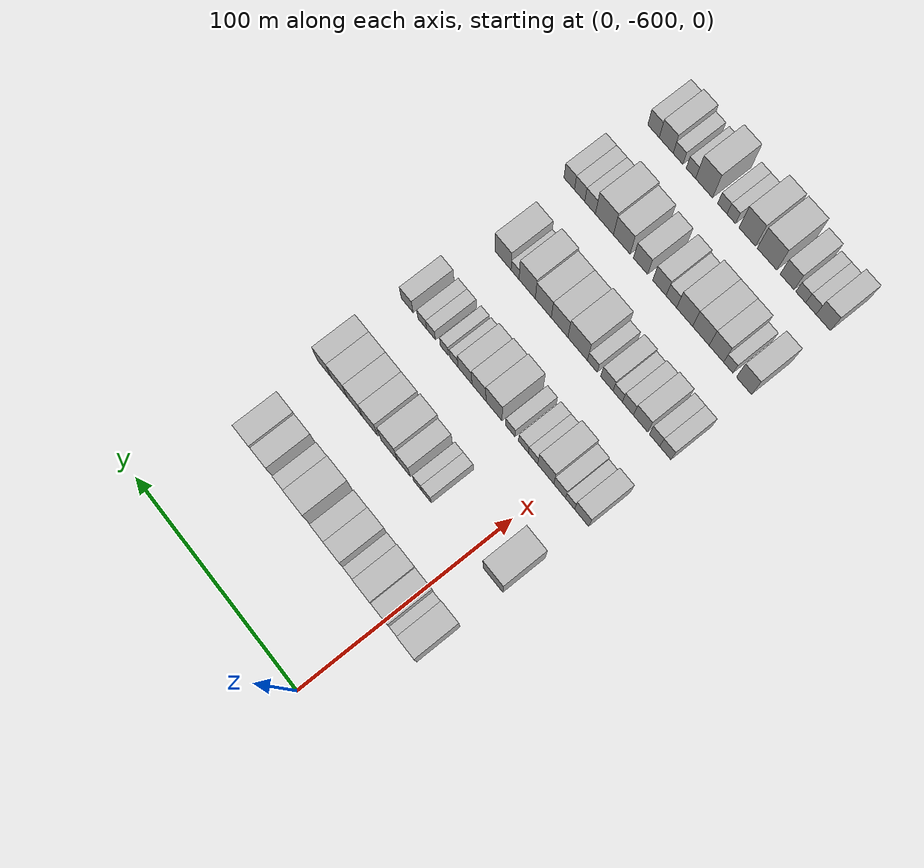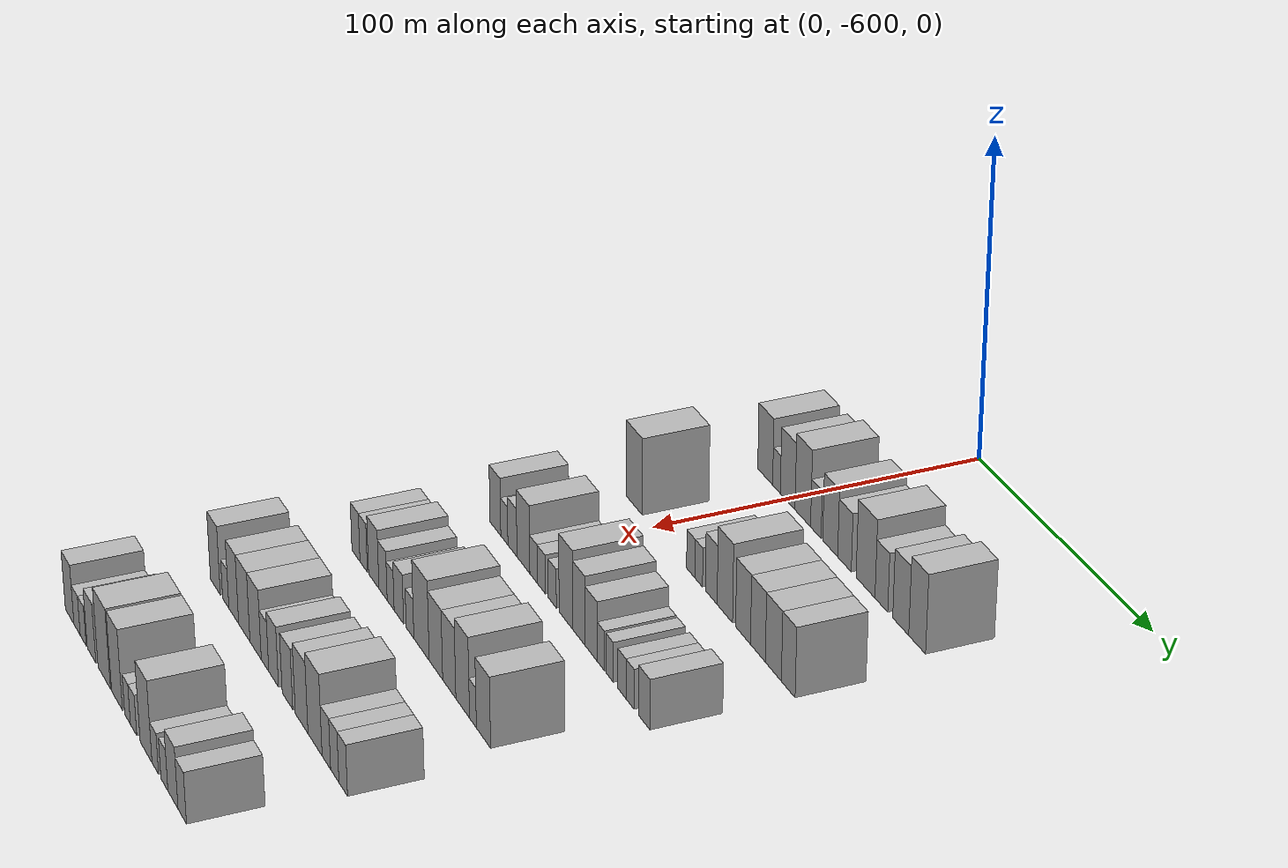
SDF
<sdf version="1.6">
 <world name="default">
  <model name="building_1">
   <static>1</static>
   <pose>50.0000 -613.9658 0 0.000000 0.000000 0.000000</pose>
   <link name="link">
    <pose>0 0 10.50 0 0 0</pose>
    <collision name="collision"><geometry><box><size>20.0000 10.0684 21.0000</size></box></geometry></collision>
    <visual name="visual">
     <cast_shadows>0</cast_shadows>
     <geometry><box><size>20.0000 10.0684 21.0000</size></box></geometry>
     <material>
      <script>
       <uri>model://HANNAS_wall/materials/scripts</uri>
       <uri>model://HANNAS_wall/materials/textures</uri>
       <name>vrc/HANNAS_wall</name>
      </script>
     </material>
    </visual>
   </link>
  </model>
  <model name="building_2">
   <static>1</static>
   <pose>50.0000 -606.3582 0 0.000000 0.000000 0.000000</pose>
   <link name="link">
    <pose>0 0 6.00 0 0 0</pose>
    <collision name="collision"><geometry><box><size>20.0000 5.1468 12.0000</size></box></geometry></collision>
    <visual name="visual">
     <cast_shadows>0</cast_shadows>
     <geometry><box><size>20.0000 5.1468 12.0000</size></box></geometry>
     <material>
      <script>
       <uri>model://HANNAS_wall/materials/scripts</uri>
       <uri>model://HANNAS_wall/materials/textures</uri>
       <name>vrc/HANNAS_wall</name>
      </script>
     </material>
    </visual>
   </link>
  </model>
  <model name="building_3">
   <static>1</static>
   <pose>50.0000 -598.9114 0 0.000000 0.000000 0.000000</pose>
   <link name="link">
    <pose>0 0 10.50 0 0 0</pose>
    <collision name="collision"><geometry><box><size>20.0000 9.7468 21.0000</size></box></geometry></collision>
    <visual name="visual">
     <cast_shadows>0</cast_shadows>
     <geometry><box><size>20.0000 9.7468 21.0000</size></box></geometry>
     <material>
      <script>
       <uri>model://HANNAS_wall/materials/scripts</uri>
       <uri>model://HANNAS_wall/materials/textures</uri>
       <name>vrc/HANNAS_wall</name>
      </script>
     </material>
    </visual>
   </link>
  </model>
  <model name="building_4">
   <static>1</static>
   <pose>50.0000 -588.9398 0 0.000000 0.000000 0.000000</pose>
   <link name="link">
    <pose>0 0 12.00 0 0 0</pose>
    <collision name="collision"><geometry><box><size>20.0000 10.1965 24.0000</size></box></geometry></collision>
    <visual name="visual">
     <cast_shadows>0</cast_shadows>
     <geometry><box><size>20.0000 10.1965 24.0000</size></box></geometry>
     <material>
      <script>
       <uri>model://HANNAS_wall/materials/scripts</uri>
       <uri>model://HANNAS_wall/materials/textures</uri>
       <name>vrc/HANNAS_wall</name>
      </script>
     </material>
    </visual>
   </link>
  </model>
  <model name="building_5">
   <static>1</static>
   <pose>50.0000 -580.4396 0 0.000000 0.000000 0.000000</pose>
   <link name="link">
    <pose>0 0 7.50 0 0 0</pose>
    <collision name="collision"><geometry><box><size>20.0000 6.8040 15.0000</size></box></geometry></collision>
    <visual name="visual">
     <cast_shadows>0</cast_shadows>
     <geometry><box><size>20.0000 6.8040 15.0000</size></box></geometry>
     <material>
      <script>
       <uri>model://HANNAS_wall/materials/scripts</uri>
       <uri>model://HANNAS_wall/materials/textures</uri>
       <name>vrc/HANNAS_wall</name>
      </script>
     </material>
    </visual>
   </link>
  </model>
  <model name="building_6">
   <static>1</static>
   <pose>50.0000 -571.2477 0 0.000000 0.000000 0.000000</pose>
   <link name="link">
    <pose>0 0 10.50 0 0 0</pose>
    <collision name="collision"><geometry><box><size>20.0000 9.5797 21.0000</size></box></geometry></collision>
    <visual name="visual">
     <cast_shadows>0</cast_shadows>
     <geometry><box><size>20.0000 9.5797 21.0000</size></box></geometry>
     <material>
      <script>
       <uri>model://HANNAS_wall/materials/scripts</uri>
       <uri>model://HANNAS_wall/materials/textures</uri>
       <name>vrc/HANNAS_wall</name>
      </script>
     </material>
    </visual>
   </link>
  </model>
  <model name="building_7">
   <static>1</static>
   <pose>50.0000 -562.1629 0 0.000000 0.000000 0.000000</pose>
   <link name="link">
    <pose>0 0 9.00 0 0 0</pose>
    <collision name="collision"><geometry><box><size>20.0000 8.5899 18.0000</size></box></geometry></collision>
    <visual name="visual">
     <cast_shadows>0</cast_shadows>
     <geometry><box><size>20.0000 8.5899 18.0000</size></box></geometry>
     <material>
      <script>
       <uri>model://HANNAS_wall/materials/scripts</uri>
       <uri>model://HANNAS_wall/materials/textures</uri>
       <name>vrc/HANNAS_wall</name>
      </script>
     </material>
    </visual>
   </link>
  </model>
  <model name="building_8">
   <static>1</static>
   <pose>50.0000 -549.0351 0 0.000000 0.000000 0.000000</pose>
   <link name="link">
    <pose>0 0 12.00 0 0 0</pose>
    <collision name="collision"><geometry><box><size>20.0000 11.6658 24.0000</size></box></geometry></collision>
    <visual name="visual">
     <cast_shadows>0</cast_shadows>
     <geometry><box><size>20.0000 11.6658 24.0000</size></box></geometry>
     <material>
      <script>
       <uri>model://HANNAS_wall/materials/scripts</uri>
       <uri>model://HANNAS_wall/materials/textures</uri>
       <name>vrc/HANNAS_wall</name>
      </script>
     </material>
    </visual>
   </link>
  </model>
  <model name="building_9">
   <static>1</static>
   <pose>50.0000 -539.3212 0 0.000000 0.000000 0.000000</pose>
   <link name="link">
    <pose>0 0 9.00 0 0 0</pose>
    <collision name="collision"><geometry><box><size>20.0000 7.7619 18.0000</size></box></geometry></collision>
    <visual name="visual">
     <cast_shadows>0</cast_shadows>
     <geometry><box><size>20.0000 7.7619 18.0000</size></box></geometry>
     <material>
      <script>
       <uri>model://HANNAS_wall/materials/scripts</uri>
       <uri>model://HANNAS_wall/materials/textures</uri>
       <name>vrc/HANNAS_wall</name>
      </script>
     </material>
    </visual>
   </link>
  </model>
  <model name="building_10">
   <static>1</static>
   <pose>50.0000 -527.6561 0 0.000000 0.000000 0.000000</pose>
   <link name="link">
    <pose>0 0 10.50 0 0 0</pose>
    <collision name="collision"><geometry><box><size>20.0000 9.5683 21.0000</size></box></geometry></collision>
    <visual name="visual">
     <cast_shadows>0</cast_shadows>
     <geometry><box><size>20.0000 9.5683 21.0000</size></box></geometry>
     <material>
      <script>
       <uri>model://HANNAS_wall/materials/scripts</uri>
       <uri>model://HANNAS_wall/materials/textures</uri>
       <name>vrc/HANNAS_wall</name>
      </script>
     </material>
    </visual>
   </link>
  </model>
  <model name="building_11">
   <static>1</static>
   <pose>50.0000 -517.9128 0 0.000000 0.000000 0.000000</pose>
   <link name="link">
    <pose>0 0 12.00 0 0 0</pose>
    <collision name="collision"><geometry><box><size>20.0000 9.9184 24.0000</size></box></geometry></collision>
    <visual name="visual">
     <cast_shadows>0</cast_shadows>
     <geometry><box><size>20.0000 9.9184 24.0000</size></box></geometry>
     <material>
      <script>
       <uri>model://HANNAS_wall/materials/scripts</uri>
       <uri>model://HANNAS_wall/materials/textures</uri>
       <name>vrc/HANNAS_wall</name>
      </script>
     </material>
    </visual>
   </link>
  </model>
  <model name="building_141">
   <static>1</static>
   <pose>90.0000 -613.2045 0 0.000000 0.000000 0.000000</pose>
   <link name="link">
    <pose>0 0 12.00 0 0 0</pose>
    <collision name="collision"><geometry><box><size>20.0000 11.5911 24.0000</size></box></geometry></collision>
    <visual name="visual">
     <cast_shadows>0</cast_shadows>
     <geometry><box><size>20.0000 11.5911 24.0000</size></box></geometry>
     <material>
      <script>
       <uri>model://HANNAS_wall/materials/scripts</uri>
       <uri>model://HANNAS_wall/materials/textures</uri>
       <name>vrc/HANNAS_wall</name>
      </script>
     </material>
    </visual>
   </link>
  </model>
  <model name="building_142">
   <static>1</static>
   <pose>90.0000 -573.8147 0 0.000000 0.000000 0.000000</pose>
   <link name="link">
    <pose>0 0 6.00 0 0 0</pose>
    <collision name="collision"><geometry><box><size>20.0000 5.7295 12.0000</size></box></geometry></collision>
    <visual name="visual">
     <cast_shadows>0</cast_shadows>
     <geometry><box><size>20.0000 5.7295 12.0000</size></box></geometry>
     <material>
      <script>
       <uri>model://HANNAS_wall/materials/scripts</uri>
       <uri>model://HANNAS_wall/materials/textures</uri>
       <name>vrc/HANNAS_wall</name>
      </script>
     </material>
    </visual>
   </link>
  </model>
  <model name="building_143">
   <static>1</static>
   <pose>90.0000 -568.4647 0 0.000000 0.000000 0.000000</pose>
   <link name="link">
    <pose>0 0 6.00 0 0 0</pose>
    <collision name="collision"><geometry><box><size>20.0000 4.9705 12.0000</size></box></geometry></collision>
    <visual name="visual">
     <cast_shadows>0</cast_shadows>
     <geometry><box><size>20.0000 4.9705 12.0000</size></box></geometry>
     <material>
      <script>
       <uri>model://HANNAS_wall/materials/scripts</uri>
       <uri>model://HANNAS_wall/materials/textures</uri>
       <name>vrc/HANNAS_wall</name>
      </script>
     </material>
    </visual>
   </link>
  </model>
  <model name="building_144">
   <static>1</static>
   <pose>90.0000 -560.1111 0 0.000000 0.000000 0.000000</pose>
   <link name="link">
    <pose>0 0 9.00 0 0 0</pose>
    <collision name="collision"><geometry><box><size>20.0000 7.7368 18.0000</size></box></geometry></collision>
    <visual name="visual">
     <cast_shadows>0</cast_shadows>
     <geometry><box><size>20.0000 7.7368 18.0000</size></box></geometry>
     <material>
      <script>
       <uri>model://HANNAS_wall/materials/scripts</uri>
       <uri>model://HANNAS_wall/materials/textures</uri>
       <name>vrc/HANNAS_wall</name>
      </script>
     </material>
    </visual>
   </link>
  </model>
  <model name="building_145">
   <static>1</static>
   <pose>90.0000 -551.2249 0 0.000000 0.000000 0.000000</pose>
   <link name="link">
    <pose>0 0 12.00 0 0 0</pose>
    <collision name="collision"><geometry><box><size>20.0000 10.0356 24.0000</size></box></geometry></collision>
    <visual name="visual">
     <cast_shadows>0</cast_shadows>
     <geometry><box><size>20.0000 10.0356 24.0000</size></box></geometry>
     <material>
      <script>
       <uri>model://HANNAS_wall/materials/scripts</uri>
       <uri>model://HANNAS_wall/materials/textures</uri>
       <name>vrc/HANNAS_wall</name>
      </script>
     </material>
    </visual>
   </link>
  </model>
  <model name="building_146">
   <static>1</static>
   <pose>90.0000 -539.4561 0 0.000000 0.000000 0.000000</pose>
   <link name="link">
    <pose>0 0 10.50 0 0 0</pose>
    <collision name="collision"><geometry><box><size>20.0000 9.5019 21.0000</size></box></geometry></collision>
    <visual name="visual">
     <cast_shadows>0</cast_shadows>
     <geometry><box><size>20.0000 9.5019 21.0000</size></box></geometry>
     <material>
      <script>
       <uri>model://HANNAS_wall/materials/scripts</uri>
       <uri>model://HANNAS_wall/materials/textures</uri>
       <name>vrc/HANNAS_wall</name>
      </script>
     </material>
    </visual>
   </link>
  </model>
  <model name="building_147">
   <static>1</static>
   <pose>90.0000 -530.0184 0 0.000000 0.000000 0.000000</pose>
   <link name="link">
    <pose>0 0 10.50 0 0 0</pose>
    <collision name="collision"><geometry><box><size>20.0000 9.3736 21.0000</size></box></geometry></collision>
    <visual name="visual">
     <cast_shadows>0</cast_shadows>
     <geometry><box><size>20.0000 9.3736 21.0000</size></box></geometry>
     <material>
      <script>
       <uri>model://HANNAS_wall/materials/scripts</uri>
       <uri>model://HANNAS_wall/materials/textures</uri>
       <name>vrc/HANNAS_wall</name>
      </script>
     </material>
    </visual>
   </link>
  </model>
  <model name="building_148">
   <static>1</static>
   <pose>90.0000 -520.3338 0 0.000000 0.000000 0.000000</pose>
   <link name="link">
    <pose>0 0 10.50 0 0 0</pose>
    <collision name="collision"><geometry><box><size>20.0000 9.9957 21.0000</size></box></geometry></collision>
    <visual name="visual">
     <cast_shadows>0</cast_shadows>
     <geometry><box><size>20.0000 9.9957 21.0000</size></box></geometry>
     <material>
      <script>
       <uri>model://HANNAS_wall/materials/scripts</uri>
       <uri>model://HANNAS_wall/materials/textures</uri>
       <name>vrc/HANNAS_wall</name>
      </script>
     </material>
    </visual>
   </link>
  </model>
  <model name="building_149">
   <static>1</static>
   <pose>90.0000 -511.1030 0 0.000000 0.000000 0.000000</pose>
   <link name="link">
    <pose>0 0 10.50 0 0 0</pose>
    <collision name="collision"><geometry><box><size>20.0000 8.4659 21.0000</size></box></geometry></collision>
    <visual name="visual">
     <cast_shadows>0</cast_shadows>
     <geometry><box><size>20.0000 8.4659 21.0000</size></box></geometry>
     <material>
      <script>
       <uri>model://HANNAS_wall/materials/scripts</uri>
       <uri>model://HANNAS_wall/materials/textures</uri>
       <name>vrc/HANNAS_wall</name>
      </script>
     </material>
    </visual>
   </link>
  </model>
  <model name="building_272">
   <static>1</static>
   <pose>130.0000 -615.8838 0 0.000000 0.000000 0.000000</pose>
   <link name="link">
    <pose>0 0 9.00 0 0 0</pose>
    <collision name="collision"><geometry><box><size>20.0000 8.2324 18.0000</size></box></geometry></collision>
    <visual name="visual">
     <cast_shadows>0</cast_shadows>
     <geometry><box><size>20.0000 8.2324 18.0000</size></box></geometry>
     <material>
      <script>
       <uri>model://HANNAS_wall/materials/scripts</uri>
       <uri>model://HANNAS_wall/materials/textures</uri>
       <name>vrc/HANNAS_wall</name>
      </script>
     </material>
    </visual>
   </link>
  </model>
  <model name="building_273">
   <static>1</static>
   <pose>130.0000 -609.0813 0 0.000000 0.000000 0.000000</pose>
   <link name="link">
    <pose>0 0 6.00 0 0 0</pose>
    <collision name="collision"><geometry><box><size>20.0000 5.3727 12.0000</size></box></geometry></collision>
    <visual name="visual">
     <cast_shadows>0</cast_shadows>
     <geometry><box><size>20.0000 5.3727 12.0000</size></box></geometry>
     <material>
      <script>
       <uri>model://HANNAS_wall/materials/scripts</uri>
       <uri>model://HANNAS_wall/materials/textures</uri>
       <name>vrc/HANNAS_wall</name>
      </script>
     </material>
    </visual>
   </link>
  </model>
  <model name="building_274">
   <static>1</static>
   <pose>130.0000 -602.9738 0 0.000000 0.000000 0.000000</pose>
   <link name="link">
    <pose>0 0 7.50 0 0 0</pose>
    <collision name="collision"><geometry><box><size>20.0000 6.8422 15.0000</size></box></geometry></collision>
    <visual name="visual">
     <cast_shadows>0</cast_shadows>
     <geometry><box><size>20.0000 6.8422 15.0000</size></box></geometry>
     <material>
      <script>
       <uri>model://HANNAS_wall/materials/scripts</uri>
       <uri>model://HANNAS_wall/materials/textures</uri>
       <name>vrc/HANNAS_wall</name>
      </script>
     </material>
    </visual>
   </link>
  </model>
  <model name="building_275">
   <static>1</static>
   <pose>130.0000 -594.8125 0 0.000000 0.000000 0.000000</pose>
   <link name="link">
    <pose>0 0 10.50 0 0 0</pose>
    <collision name="collision"><geometry><box><size>20.0000 9.4805 21.0000</size></box></geometry></collision>
    <visual name="visual">
     <cast_shadows>0</cast_shadows>
     <geometry><box><size>20.0000 9.4805 21.0000</size></box></geometry>
     <material>
      <script>
       <uri>model://HANNAS_wall/materials/scripts</uri>
       <uri>model://HANNAS_wall/materials/textures</uri>
       <name>vrc/HANNAS_wall</name>
      </script>
     </material>
    </visual>
   </link>
  </model>
  <model name="building_276">
   <static>1</static>
   <pose>130.0000 -587.3293 0 0.000000 0.000000 0.000000</pose>
   <link name="link">
    <pose>0 0 6.00 0 0 0</pose>
    <collision name="collision"><geometry><box><size>20.0000 5.4858 12.0000</size></box></geometry></collision>
    <visual name="visual">
     <cast_shadows>0</cast_shadows>
     <geometry><box><size>20.0000 5.4858 12.0000</size></box></geometry>
     <material>
      <script>
       <uri>model://HANNAS_wall/materials/scripts</uri>
       <uri>model://HANNAS_wall/materials/textures</uri>
       <name>vrc/HANNAS_wall</name>
      </script>
     </material>
    </visual>
   </link>
  </model>
  <model name="building_277">
   <static>1</static>
   <pose>130.0000 -581.6102 0 0.000000 0.000000 0.000000</pose>
   <link name="link">
    <pose>0 0 6.00 0 0 0</pose>
    <collision name="collision"><geometry><box><size>20.0000 5.9525 12.0000</size></box></geometry></collision>
    <visual name="visual">
     <cast_shadows>0</cast_shadows>
     <geometry><box><size>20.0000 5.9525 12.0000</size></box></geometry>
     <material>
      <script>
       <uri>model://HANNAS_wall/materials/scripts</uri>
       <uri>model://HANNAS_wall/materials/textures</uri>
       <name>vrc/HANNAS_wall</name>
      </script>
     </material>
    </visual>
   </link>
  </model>
  <model name="building_278">
   <static>1</static>
   <pose>130.0000 -573.7267 0 0.000000 0.000000 0.000000</pose>
   <link name="link">
    <pose>0 0 6.00 0 0 0</pose>
    <collision name="collision"><geometry><box><size>20.0000 5.8144 12.0000</size></box></geometry></collision>
    <visual name="visual">
     <cast_shadows>0</cast_shadows>
     <geometry><box><size>20.0000 5.8144 12.0000</size></box></geometry>
     <material>
      <script>
       <uri>model://HANNAS_wall/materials/scripts</uri>
       <uri>model://HANNAS_wall/materials/textures</uri>
       <name>vrc/HANNAS_wall</name>
      </script>
     </material>
    </visual>
   </link>
  </model>
  <model name="building_279">
   <static>1</static>
   <pose>130.0000 -563.9725 0 0.000000 0.000000 0.000000</pose>
   <link name="link">
    <pose>0 0 12.00 0 0 0</pose>
    <collision name="collision"><geometry><box><size>20.0000 9.6940 24.0000</size></box></geometry></collision>
    <visual name="visual">
     <cast_shadows>0</cast_shadows>
     <geometry><box><size>20.0000 9.6940 24.0000</size></box></geometry>
     <material>
      <script>
       <uri>model://HANNAS_wall/materials/scripts</uri>
       <uri>model://HANNAS_wall/materials/textures</uri>
       <name>vrc/HANNAS_wall</name>
      </script>
     </material>
    </visual>
   </link>
  </model>
  <model name="building_280">
   <static>1</static>
   <pose>130.0000 -554.8640 0 0.000000 0.000000 0.000000</pose>
   <link name="link">
    <pose>0 0 10.50 0 0 0</pose>
    <collision name="collision"><geometry><box><size>20.0000 8.5230 21.0000</size></box></geometry></collision>
    <visual name="visual">
     <cast_shadows>0</cast_shadows>
     <geometry><box><size>20.0000 8.5230 21.0000</size></box></geometry>
     <material>
      <script>
       <uri>model://HANNAS_wall/materials/scripts</uri>
       <uri>model://HANNAS_wall/materials/textures</uri>
       <name>vrc/HANNAS_wall</name>
      </script>
     </material>
    </visual>
   </link>
  </model>
  <model name="building_281">
   <static>1</static>
   <pose>130.0000 -546.4167 0 0.000000 0.000000 0.000000</pose>
   <link name="link">
    <pose>0 0 9.00 0 0 0</pose>
    <collision name="collision"><geometry><box><size>20.0000 8.3717 18.0000</size></box></geometry></collision>
    <visual name="visual">
     <cast_shadows>0</cast_shadows>
     <geometry><box><size>20.0000 8.3717 18.0000</size></box></geometry>
     <material>
      <script>
       <uri>model://HANNAS_wall/materials/scripts</uri>
       <uri>model://HANNAS_wall/materials/textures</uri>
       <name>vrc/HANNAS_wall</name>
      </script>
     </material>
    </visual>
   </link>
  </model>
  <model name="building_282">
   <static>1</static>
   <pose>130.0000 -539.7718 0 0.000000 0.000000 0.000000</pose>
   <link name="link">
    <pose>0 0 6.00 0 0 0</pose>
    <collision name="collision"><geometry><box><size>20.0000 4.9182 12.0000</size></box></geometry></collision>
    <visual name="visual">
     <cast_shadows>0</cast_shadows>
     <geometry><box><size>20.0000 4.9182 12.0000</size></box></geometry>
     <material>
      <script>
       <uri>model://HANNAS_wall/materials/scripts</uri>
       <uri>model://HANNAS_wall/materials/textures</uri>
       <name>vrc/HANNAS_wall</name>
      </script>
     </material>
    </visual>
   </link>
  </model>
  <model name="building_283">
   <static>1</static>
   <pose>130.0000 -533.8472 0 0.000000 0.000000 0.000000</pose>
   <link name="link">
    <pose>0 0 6.00 0 0 0</pose>
    <collision name="collision"><geometry><box><size>20.0000 4.9310 12.0000</size></box></geometry></collision>
    <visual name="visual">
     <cast_shadows>0</cast_shadows>
     <geometry><box><size>20.0000 4.9310 12.0000</size></box></geometry>
     <material>
      <script>
       <uri>model://HANNAS_wall/materials/scripts</uri>
       <uri>model://HANNAS_wall/materials/textures</uri>
       <name>vrc/HANNAS_wall</name>
      </script>
     </material>
    </visual>
   </link>
  </model>
  <model name="building_284">
   <static>1</static>
   <pose>130.0000 -525.6614 0 0.000000 0.000000 0.000000</pose>
   <link name="link">
    <pose>0 0 6.00 0 0 0</pose>
    <collision name="collision"><geometry><box><size>20.0000 5.4404 12.0000</size></box></geometry></collision>
    <visual name="visual">
     <cast_shadows>0</cast_shadows>
     <geometry><box><size>20.0000 5.4404 12.0000</size></box></geometry>
     <material>
      <script>
       <uri>model://HANNAS_wall/materials/scripts</uri>
       <uri>model://HANNAS_wall/materials/textures</uri>
       <name>vrc/HANNAS_wall</name>
      </script>
     </material>
    </visual>
   </link>
  </model>
  <model name="building_285">
   <static>1</static>
   <pose>130.0000 -520.2457 0 0.000000 0.000000 0.000000</pose>
   <link name="link">
    <pose>0 0 6.00 0 0 0</pose>
    <collision name="collision"><geometry><box><size>20.0000 5.3910 12.0000</size></box></geometry></collision>
    <visual name="visual">
     <cast_shadows>0</cast_shadows>
     <geometry><box><size>20.0000 5.3910 12.0000</size></box></geometry>
     <material>
      <script>
       <uri>model://HANNAS_wall/materials/scripts</uri>
       <uri>model://HANNAS_wall/materials/textures</uri>
       <name>vrc/HANNAS_wall</name>
      </script>
     </material>
    </visual>
   </link>
  </model>
  <model name="building_286">
   <static>1</static>
   <pose>130.0000 -510.8819 0 0.000000 0.000000 0.000000</pose>
   <link name="link">
    <pose>0 0 7.50 0 0 0</pose>
    <collision name="collision"><geometry><box><size>20.0000 7.3366 15.0000</size></box></geometry></collision>
    <visual name="visual">
     <cast_shadows>0</cast_shadows>
     <geometry><box><size>20.0000 7.3366 15.0000</size></box></geometry>
     <material>
      <script>
       <uri>model://HANNAS_wall/materials/scripts</uri>
       <uri>model://HANNAS_wall/materials/textures</uri>
       <name>vrc/HANNAS_wall</name>
      </script>
     </material>
    </visual>
   </link>
  </model>
  <model name="building_418">
   <static>1</static>
   <pose>170.0000 -616.7311 0 0.000000 0.000000 0.000000</pose>
   <link name="link">
    <pose>0 0 7.50 0 0 0</pose>
    <collision name="collision"><geometry><box><size>20.0000 6.5379 15.0000</size></box></geometry></collision>
    <visual name="visual">
     <cast_shadows>0</cast_shadows>
     <geometry><box><size>20.0000 6.5379 15.0000</size></box></geometry>
     <material>
      <script>
       <uri>model://HANNAS_wall/materials/scripts</uri>
       <uri>model://HANNAS_wall/materials/textures</uri>
       <name>vrc/HANNAS_wall</name>
      </script>
     </material>
    </visual>
   </link>
  </model>
  <model name="building_419">
   <static>1</static>
   <pose>170.0000 -610.4520 0 0.000000 0.000000 0.000000</pose>
   <link name="link">
    <pose>0 0 7.50 0 0 0</pose>
    <collision name="collision"><geometry><box><size>20.0000 6.0203 15.0000</size></box></geometry></collision>
    <visual name="visual">
     <cast_shadows>0</cast_shadows>
     <geometry><box><size>20.0000 6.0203 15.0000</size></box></geometry>
     <material>
      <script>
       <uri>model://HANNAS_wall/materials/scripts</uri>
       <uri>model://HANNAS_wall/materials/textures</uri>
       <name>vrc/HANNAS_wall</name>
      </script>
     </material>
    </visual>
   </link>
  </model>
  <model name="building_420">
   <static>1</static>
   <pose>170.0000 -602.2879 0 0.000000 0.000000 0.000000</pose>
   <link name="link">
    <pose>0 0 9.00 0 0 0</pose>
    <collision name="collision"><geometry><box><size>20.0000 8.3078 18.0000</size></box></geometry></collision>
    <visual name="visual">
     <cast_shadows>0</cast_shadows>
     <geometry><box><size>20.0000 8.3078 18.0000</size></box></geometry>
     <material>
      <script>
       <uri>model://HANNAS_wall/materials/scripts</uri>
       <uri>model://HANNAS_wall/materials/textures</uri>
       <name>vrc/HANNAS_wall</name>
      </script>
     </material>
    </visual>
   </link>
  </model>
  <model name="building_421">
   <static>1</static>
   <pose>170.0000 -594.8792 0 0.000000 0.000000 0.000000</pose>
   <link name="link">
    <pose>0 0 7.50 0 0 0</pose>
    <collision name="collision"><geometry><box><size>20.0000 6.5096 15.0000</size></box></geometry></collision>
    <visual name="visual">
     <cast_shadows>0</cast_shadows>
     <geometry><box><size>20.0000 6.5096 15.0000</size></box></geometry>
     <material>
      <script>
       <uri>model://HANNAS_wall/materials/scripts</uri>
       <uri>model://HANNAS_wall/materials/textures</uri>
       <name>vrc/HANNAS_wall</name>
      </script>
     </material>
    </visual>
   </link>
  </model>
  <model name="building_422">
   <static>1</static>
   <pose>170.0000 -588.8795 0 0.000000 0.000000 0.000000</pose>
   <link name="link">
    <pose>0 0 6.00 0 0 0</pose>
    <collision name="collision"><geometry><box><size>20.0000 5.4897 12.0000</size></box></geometry></collision>
    <visual name="visual">
     <cast_shadows>0</cast_shadows>
     <geometry><box><size>20.0000 5.4897 12.0000</size></box></geometry>
     <material>
      <script>
       <uri>model://HANNAS_wall/materials/scripts</uri>
       <uri>model://HANNAS_wall/materials/textures</uri>
       <name>vrc/HANNAS_wall</name>
      </script>
     </material>
    </visual>
   </link>
  </model>
  <model name="building_423">
   <static>1</static>
   <pose>170.0000 -582.4587 0 0.000000 0.000000 0.000000</pose>
   <link name="link">
    <pose>0 0 7.50 0 0 0</pose>
    <collision name="collision"><geometry><box><size>20.0000 7.3519 15.0000</size></box></geometry></collision>
    <visual name="visual">
     <cast_shadows>0</cast_shadows>
     <geometry><box><size>20.0000 7.3519 15.0000</size></box></geometry>
     <material>
      <script>
       <uri>model://HANNAS_wall/materials/scripts</uri>
       <uri>model://HANNAS_wall/materials/textures</uri>
       <name>vrc/HANNAS_wall</name>
      </script>
     </material>
    </visual>
   </link>
  </model>
  <model name="building_424">
   <static>1</static>
   <pose>170.0000 -573.8383 0 0.000000 0.000000 0.000000</pose>
   <link name="link">
    <pose>0 0 6.00 0 0 0</pose>
    <collision name="collision"><geometry><box><size>20.0000 5.8890 12.0000</size></box></geometry></collision>
    <visual name="visual">
     <cast_shadows>0</cast_shadows>
     <geometry><box><size>20.0000 5.8890 12.0000</size></box></geometry>
     <material>
      <script>
       <uri>model://HANNAS_wall/materials/scripts</uri>
       <uri>model://HANNAS_wall/materials/textures</uri>
       <name>vrc/HANNAS_wall</name>
      </script>
     </material>
    </visual>
   </link>
  </model>
  <model name="building_425">
   <static>1</static>
   <pose>170.0000 -565.0749 0 0.000000 0.000000 0.000000</pose>
   <link name="link">
    <pose>0 0 12.00 0 0 0</pose>
    <collision name="collision"><geometry><box><size>20.0000 11.6377 24.0000</size></box></geometry></collision>
    <visual name="visual">
     <cast_shadows>0</cast_shadows>
     <geometry><box><size>20.0000 11.6377 24.0000</size></box></geometry>
     <material>
      <script>
       <uri>model://HANNAS_wall/materials/scripts</uri>
       <uri>model://HANNAS_wall/materials/textures</uri>
       <name>vrc/HANNAS_wall</name>
      </script>
     </material>
    </visual>
   </link>
  </model>
  <model name="building_426">
   <static>1</static>
   <pose>170.0000 -554.2316 0 0.000000 0.000000 0.000000</pose>
   <link name="link">
    <pose>0 0 10.50 0 0 0</pose>
    <collision name="collision"><geometry><box><size>20.0000 10.0490 21.0000</size></box></geometry></collision>
    <visual name="visual">
     <cast_shadows>0</cast_shadows>
     <geometry><box><size>20.0000 10.0490 21.0000</size></box></geometry>
     <material>
      <script>
       <uri>model://HANNAS_wall/materials/scripts</uri>
       <uri>model://HANNAS_wall/materials/textures</uri>
       <name>vrc/HANNAS_wall</name>
      </script>
     </material>
    </visual>
   </link>
  </model>
  <model name="building_427">
   <static>1</static>
   <pose>170.0000 -544.3743 0 0.000000 0.000000 0.000000</pose>
   <link name="link">
    <pose>0 0 10.50 0 0 0</pose>
    <collision name="collision"><geometry><box><size>20.0000 9.6657 21.0000</size></box></geometry></collision>
    <visual name="visual">
     <cast_shadows>0</cast_shadows>
     <geometry><box><size>20.0000 9.6657 21.0000</size></box></geometry>
     <material>
      <script>
       <uri>model://HANNAS_wall/materials/scripts</uri>
       <uri>model://HANNAS_wall/materials/textures</uri>
       <name>vrc/HANNAS_wall</name>
      </script>
     </material>
    </visual>
   </link>
  </model>
  <model name="building_428">
   <static>1</static>
   <pose>170.0000 -534.5955 0 0.000000 0.000000 0.000000</pose>
   <link name="link">
    <pose>0 0 12.00 0 0 0</pose>
    <collision name="collision"><geometry><box><size>20.0000 9.8920 24.0000</size></box></geometry></collision>
    <visual name="visual">
     <cast_shadows>0</cast_shadows>
     <geometry><box><size>20.0000 9.8920 24.0000</size></box></geometry>
     <material>
      <script>
       <uri>model://HANNAS_wall/materials/scripts</uri>
       <uri>model://HANNAS_wall/materials/textures</uri>
       <name>vrc/HANNAS_wall</name>
      </script>
     </material>
    </visual>
   </link>
  </model>
  <model name="building_429">
   <static>1</static>
   <pose>170.0000 -527.2158 0 0.000000 0.000000 0.000000</pose>
   <link name="link">
    <pose>0 0 6.00 0 0 0</pose>
    <collision name="collision"><geometry><box><size>20.0000 4.8675 12.0000</size></box></geometry></collision>
    <visual name="visual">
     <cast_shadows>0</cast_shadows>
     <geometry><box><size>20.0000 4.8675 12.0000</size></box></geometry>
     <material>
      <script>
       <uri>model://HANNAS_wall/materials/scripts</uri>
       <uri>model://HANNAS_wall/materials/textures</uri>
       <name>vrc/HANNAS_wall</name>
      </script>
     </material>
    </visual>
   </link>
  </model>
  <model name="building_430">
   <static>1</static>
   <pose>170.0000 -519.7496 0 0.000000 0.000000 0.000000</pose>
   <link name="link">
    <pose>0 0 10.50 0 0 0</pose>
    <collision name="collision"><geometry><box><size>20.0000 10.0649 21.0000</size></box></geometry></collision>
    <visual name="visual">
     <cast_shadows>0</cast_shadows>
     <geometry><box><size>20.0000 10.0649 21.0000</size></box></geometry>
     <material>
      <script>
       <uri>model://HANNAS_wall/materials/scripts</uri>
       <uri>model://HANNAS_wall/materials/textures</uri>
       <name>vrc/HANNAS_wall</name>
      </script>
     </material>
    </visual>
   </link>
  </model>
  <model name="building_550">
   <static>1</static>
   <pose>210.0000 -615.6424 0 0.000000 0.000000 0.000000</pose>
   <link name="link">
    <pose>0 0 10.50 0 0 0</pose>
    <collision name="collision"><geometry><box><size>20.0000 8.7152 21.0000</size></box></geometry></collision>
    <visual name="visual">
     <cast_shadows>0</cast_shadows>
     <geometry><box><size>20.0000 8.7152 21.0000</size></box></geometry>
     <material>
      <script>
       <uri>model://HANNAS_wall/materials/scripts</uri>
       <uri>model://HANNAS_wall/materials/textures</uri>
       <name>vrc/HANNAS_wall</name>
      </script>
     </material>
    </visual>
   </link>
  </model>
  <model name="building_551">
   <static>1</static>
   <pose>210.0000 -606.5562 0 0.000000 0.000000 0.000000</pose>
   <link name="link">
    <pose>0 0 6.00 0 0 0</pose>
    <collision name="collision"><geometry><box><size>20.0000 5.4572 12.0000</size></box></geometry></collision>
    <visual name="visual">
     <cast_shadows>0</cast_shadows>
     <geometry><box><size>20.0000 5.4572 12.0000</size></box></geometry>
     <material>
      <script>
       <uri>model://HANNAS_wall/materials/scripts</uri>
       <uri>model://HANNAS_wall/materials/textures</uri>
       <name>vrc/HANNAS_wall</name>
      </script>
     </material>
    </visual>
   </link>
  </model>
  <model name="building_552">
   <static>1</static>
   <pose>210.0000 -599.6110 0 0.000000 0.000000 0.000000</pose>
   <link name="link">
    <pose>0 0 10.50 0 0 0</pose>
    <collision name="collision"><geometry><box><size>20.0000 8.4331 21.0000</size></box></geometry></collision>
    <visual name="visual">
     <cast_shadows>0</cast_shadows>
     <geometry><box><size>20.0000 8.4331 21.0000</size></box></geometry>
     <material>
      <script>
       <uri>model://HANNAS_wall/materials/scripts</uri>
       <uri>model://HANNAS_wall/materials/textures</uri>
       <name>vrc/HANNAS_wall</name>
      </script>
     </material>
    </visual>
   </link>
  </model>
  <model name="building_553">
   <static>1</static>
   <pose>210.0000 -590.5717 0 0.000000 0.000000 0.000000</pose>
   <link name="link">
    <pose>0 0 10.50 0 0 0</pose>
    <collision name="collision"><geometry><box><size>20.0000 9.6456 21.0000</size></box></geometry></collision>
    <visual name="visual">
     <cast_shadows>0</cast_shadows>
     <geometry><box><size>20.0000 9.6456 21.0000</size></box></geometry>
     <material>
      <script>
       <uri>model://HANNAS_wall/materials/scripts</uri>
       <uri>model://HANNAS_wall/materials/textures</uri>
       <name>vrc/HANNAS_wall</name>
      </script>
     </material>
    </visual>
   </link>
  </model>
  <model name="building_554">
   <static>1</static>
   <pose>210.0000 -581.0075 0 0.000000 0.000000 0.000000</pose>
   <link name="link">
    <pose>0 0 10.50 0 0 0</pose>
    <collision name="collision"><geometry><box><size>20.0000 9.4827 21.0000</size></box></geometry></collision>
    <visual name="visual">
     <cast_shadows>0</cast_shadows>
     <geometry><box><size>20.0000 9.4827 21.0000</size></box></geometry>
     <material>
      <script>
       <uri>model://HANNAS_wall/materials/scripts</uri>
       <uri>model://HANNAS_wall/materials/textures</uri>
       <name>vrc/HANNAS_wall</name>
      </script>
     </material>
    </visual>
   </link>
  </model>
  <model name="building_555">
   <static>1</static>
   <pose>210.0000 -573.1713 0 0.000000 0.000000 0.000000</pose>
   <link name="link">
    <pose>0 0 7.50 0 0 0</pose>
    <collision name="collision"><geometry><box><size>20.0000 6.1899 15.0000</size></box></geometry></collision>
    <visual name="visual">
     <cast_shadows>0</cast_shadows>
     <geometry><box><size>20.0000 6.1899 15.0000</size></box></geometry>
     <material>
      <script>
       <uri>model://HANNAS_wall/materials/scripts</uri>
       <uri>model://HANNAS_wall/materials/textures</uri>
       <name>vrc/HANNAS_wall</name>
      </script>
     </material>
    </visual>
   </link>
  </model>
  <model name="building_556">
   <static>1</static>
   <pose>210.0000 -566.0793 0 0.000000 0.000000 0.000000</pose>
   <link name="link">
    <pose>0 0 9.00 0 0 0</pose>
    <collision name="collision"><geometry><box><size>20.0000 7.9941 18.0000</size></box></geometry></collision>
    <visual name="visual">
     <cast_shadows>0</cast_shadows>
     <geometry><box><size>20.0000 7.9941 18.0000</size></box></geometry>
     <material>
      <script>
       <uri>model://HANNAS_wall/materials/scripts</uri>
       <uri>model://HANNAS_wall/materials/textures</uri>
       <name>vrc/HANNAS_wall</name>
      </script>
     </material>
    </visual>
   </link>
  </model>
  <model name="building_557">
   <static>1</static>
   <pose>210.0000 -554.8164 0 0.000000 0.000000 0.000000</pose>
   <link name="link">
    <pose>0 0 9.00 0 0 0</pose>
    <collision name="collision"><geometry><box><size>20.0000 8.5316 18.0000</size></box></geometry></collision>
    <visual name="visual">
     <cast_shadows>0</cast_shadows>
     <geometry><box><size>20.0000 8.5316 18.0000</size></box></geometry>
     <material>
      <script>
       <uri>model://HANNAS_wall/materials/scripts</uri>
       <uri>model://HANNAS_wall/materials/textures</uri>
       <name>vrc/HANNAS_wall</name>
      </script>
     </material>
    </visual>
   </link>
  </model>
  <model name="building_558">
   <static>1</static>
   <pose>210.0000 -543.5227 0 0.000000 0.000000 0.000000</pose>
   <link name="link">
    <pose>0 0 10.50 0 0 0</pose>
    <collision name="collision"><geometry><box><size>20.0000 10.0558 21.0000</size></box></geometry></collision>
    <visual name="visual">
     <cast_shadows>0</cast_shadows>
     <geometry><box><size>20.0000 10.0558 21.0000</size></box></geometry>
     <material>
      <script>
       <uri>model://HANNAS_wall/materials/scripts</uri>
       <uri>model://HANNAS_wall/materials/textures</uri>
       <name>vrc/HANNAS_wall</name>
      </script>
     </material>
    </visual>
   </link>
  </model>
  <model name="building_559">
   <static>1</static>
   <pose>210.0000 -533.0065 0 0.000000 0.000000 0.000000</pose>
   <link name="link">
    <pose>0 0 12.00 0 0 0</pose>
    <collision name="collision"><geometry><box><size>20.0000 10.9766 24.0000</size></box></geometry></collision>
    <visual name="visual">
     <cast_shadows>0</cast_shadows>
     <geometry><box><size>20.0000 10.9766 24.0000</size></box></geometry>
     <material>
      <script>
       <uri>model://HANNAS_wall/materials/scripts</uri>
       <uri>model://HANNAS_wall/materials/textures</uri>
       <name>vrc/HANNAS_wall</name>
      </script>
     </material>
    </visual>
   </link>
  </model>
  <model name="building_560">
   <static>1</static>
   <pose>210.0000 -524.2446 0 0.000000 0.000000 0.000000</pose>
   <link name="link">
    <pose>0 0 7.50 0 0 0</pose>
    <collision name="collision"><geometry><box><size>20.0000 6.5472 15.0000</size></box></geometry></collision>
    <visual name="visual">
     <cast_shadows>0</cast_shadows>
     <geometry><box><size>20.0000 6.5472 15.0000</size></box></geometry>
     <material>
      <script>
       <uri>model://HANNAS_wall/materials/scripts</uri>
       <uri>model://HANNAS_wall/materials/textures</uri>
       <name>vrc/HANNAS_wall</name>
      </script>
     </material>
    </visual>
   </link>
  </model>
  <model name="building_561">
   <static>1</static>
   <pose>210.0000 -517.8320 0 0.000000 0.000000 0.000000</pose>
   <link name="link">
    <pose>0 0 7.50 0 0 0</pose>
    <collision name="collision"><geometry><box><size>20.0000 6.2780 15.0000</size></box></geometry></collision>
    <visual name="visual">
     <cast_shadows>0</cast_shadows>
     <geometry><box><size>20.0000 6.2780 15.0000</size></box></geometry>
     <material>
      <script>
       <uri>model://HANNAS_wall/materials/scripts</uri>
       <uri>model://HANNAS_wall/materials/textures</uri>
       <name>vrc/HANNAS_wall</name>
      </script>
     </material>
    </visual>
   </link>
  </model>
  <model name="building_562">
   <static>1</static>
   <pose>210.0000 -511.4611 0 0.000000 0.000000 0.000000</pose>
   <link name="link">
    <pose>0 0 7.50 0 0 0</pose>
    <collision name="collision"><geometry><box><size>20.0000 6.4639 15.0000</size></box></geometry></collision>
    <visual name="visual">
     <cast_shadows>0</cast_shadows>
     <geometry><box><size>20.0000 6.4639 15.0000</size></box></geometry>
     <material>
      <script>
       <uri>model://HANNAS_wall/materials/scripts</uri>
       <uri>model://HANNAS_wall/materials/textures</uri>
       <name>vrc/HANNAS_wall</name>
      </script>
     </material>
    </visual>
   </link>
  </model>
  <model name="building_680">
   <static>1</static>
   <pose>250.0000 -615.8788 0 0.000000 0.000000 0.000000</pose>
   <link name="link">
    <pose>0 0 9.00 0 0 0</pose>
    <collision name="collision"><geometry><box><size>20.0000 8.2424 18.0000</size></box></geometry></collision>
    <visual name="visual">
     <cast_shadows>0</cast_shadows>
     <geometry><box><size>20.0000 8.2424 18.0000</size></box></geometry>
     <material>
      <script>
       <uri>model://HANNAS_wall/materials/scripts</uri>
       <uri>model://HANNAS_wall/materials/textures</uri>
       <name>vrc/HANNAS_wall</name>
      </script>
     </material>
    </visual>
   </link>
  </model>
  <model name="building_681">
   <static>1</static>
   <pose>250.0000 -608.7628 0 0.000000 0.000000 0.000000</pose>
   <link name="link">
    <pose>0 0 6.00 0 0 0</pose>
    <collision name="collision"><geometry><box><size>20.0000 5.9895 12.0000</size></box></geometry></collision>
    <visual name="visual">
     <cast_shadows>0</cast_shadows>
     <geometry><box><size>20.0000 5.9895 12.0000</size></box></geometry>
     <material>
      <script>
       <uri>model://HANNAS_wall/materials/scripts</uri>
       <uri>model://HANNAS_wall/materials/textures</uri>
       <name>vrc/HANNAS_wall</name>
      </script>
     </material>
    </visual>
   </link>
  </model>
  <model name="building_682">
   <static>1</static>
   <pose>250.0000 -602.9191 0 0.000000 0.000000 0.000000</pose>
   <link name="link">
    <pose>0 0 6.00 0 0 0</pose>
    <collision name="collision"><geometry><box><size>20.0000 5.6979 12.0000</size></box></geometry></collision>
    <visual name="visual">
     <cast_shadows>0</cast_shadows>
     <geometry><box><size>20.0000 5.6979 12.0000</size></box></geometry>
     <material>
      <script>
       <uri>model://HANNAS_wall/materials/scripts</uri>
       <uri>model://HANNAS_wall/materials/textures</uri>
       <name>vrc/HANNAS_wall</name>
      </script>
     </material>
    </visual>
   </link>
  </model>
  <model name="building_683">
   <static>1</static>
   <pose>250.0000 -595.0191 0 0.000000 0.000000 0.000000</pose>
   <link name="link">
    <pose>0 0 9.00 0 0 0</pose>
    <collision name="collision"><geometry><box><size>20.0000 8.1020 18.0000</size></box></geometry></collision>
    <visual name="visual">
     <cast_shadows>0</cast_shadows>
     <geometry><box><size>20.0000 8.1020 18.0000</size></box></geometry>
     <material>
      <script>
       <uri>model://HANNAS_wall/materials/scripts</uri>
       <uri>model://HANNAS_wall/materials/textures</uri>
       <name>vrc/HANNAS_wall</name>
      </script>
     </material>
    </visual>
   </link>
  </model>
  <model name="building_684">
   <static>1</static>
   <pose>250.0000 -583.2566 0 0.000000 0.000000 0.000000</pose>
   <link name="link">
    <pose>0 0 12.00 0 0 0</pose>
    <collision name="collision"><geometry><box><size>20.0000 11.4230 24.0000</size></box></geometry></collision>
    <visual name="visual">
     <cast_shadows>0</cast_shadows>
     <geometry><box><size>20.0000 11.4230 24.0000</size></box></geometry>
     <material>
      <script>
       <uri>model://HANNAS_wall/materials/scripts</uri>
       <uri>model://HANNAS_wall/materials/textures</uri>
       <name>vrc/HANNAS_wall</name>
      </script>
     </material>
    </visual>
   </link>
  </model>
  <model name="building_685">
   <static>1</static>
   <pose>250.0000 -571.6398 0 0.000000 0.000000 0.000000</pose>
   <link name="link">
    <pose>0 0 12.00 0 0 0</pose>
    <collision name="collision"><geometry><box><size>20.0000 9.8107 24.0000</size></box></geometry></collision>
    <visual name="visual">
     <cast_shadows>0</cast_shadows>
     <geometry><box><size>20.0000 9.8107 24.0000</size></box></geometry>
     <material>
      <script>
       <uri>model://HANNAS_wall/materials/scripts</uri>
       <uri>model://HANNAS_wall/materials/textures</uri>
       <name>vrc/HANNAS_wall</name>
      </script>
     </material>
    </visual>
   </link>
  </model>
  <model name="building_686">
   <static>1</static>
   <pose>250.0000 -562.1899 0 0.000000 0.000000 0.000000</pose>
   <link name="link">
    <pose>0 0 6.00 0 0 0</pose>
    <collision name="collision"><geometry><box><size>20.0000 5.0891 12.0000</size></box></geometry></collision>
    <visual name="visual">
     <cast_shadows>0</cast_shadows>
     <geometry><box><size>20.0000 5.0891 12.0000</size></box></geometry>
     <material>
      <script>
       <uri>model://HANNAS_wall/materials/scripts</uri>
       <uri>model://HANNAS_wall/materials/textures</uri>
       <name>vrc/HANNAS_wall</name>
      </script>
     </material>
    </visual>
   </link>
  </model>
  <model name="building_687">
   <static>1</static>
   <pose>250.0000 -556.8413 0 0.000000 0.000000 0.000000</pose>
   <link name="link">
    <pose>0 0 6.00 0 0 0</pose>
    <collision name="collision"><geometry><box><size>20.0000 5.6082 12.0000</size></box></geometry></collision>
    <visual name="visual">
     <cast_shadows>0</cast_shadows>
     <geometry><box><size>20.0000 5.6082 12.0000</size></box></geometry>
     <material>
      <script>
       <uri>model://HANNAS_wall/materials/scripts</uri>
       <uri>model://HANNAS_wall/materials/textures</uri>
       <name>vrc/HANNAS_wall</name>
      </script>
     </material>
    </visual>
   </link>
  </model>
  <model name="building_688">
   <static>1</static>
   <pose>250.0000 -545.9404 0 0.000000 0.000000 0.000000</pose>
   <link name="link">
    <pose>0 0 12.00 0 0 0</pose>
    <collision name="collision"><geometry><box><size>20.0000 10.1935 24.0000</size></box></geometry></collision>
    <visual name="visual">
     <cast_shadows>0</cast_shadows>
     <geometry><box><size>20.0000 10.1935 24.0000</size></box></geometry>
     <material>
      <script>
       <uri>model://HANNAS_wall/materials/scripts</uri>
       <uri>model://HANNAS_wall/materials/textures</uri>
       <name>vrc/HANNAS_wall</name>
      </script>
     </material>
    </visual>
   </link>
  </model>
  <model name="building_689">
   <static>1</static>
   <pose>250.0000 -538.0218 0 0.000000 0.000000 0.000000</pose>
   <link name="link">
    <pose>0 0 6.00 0 0 0</pose>
    <collision name="collision"><geometry><box><size>20.0000 5.6437 12.0000</size></box></geometry></collision>
    <visual name="visual">
     <cast_shadows>0</cast_shadows>
     <geometry><box><size>20.0000 5.6437 12.0000</size></box></geometry>
     <material>
      <script>
       <uri>model://HANNAS_wall/materials/scripts</uri>
       <uri>model://HANNAS_wall/materials/textures</uri>
       <name>vrc/HANNAS_wall</name>
      </script>
     </material>
    </visual>
   </link>
  </model>
  <model name="building_690">
   <static>1</static>
   <pose>250.0000 -530.2361 0 0.000000 0.000000 0.000000</pose>
   <link name="link">
    <pose>0 0 6.00 0 0 0</pose>
    <collision name="collision"><geometry><box><size>20.0000 5.9277 12.0000</size></box></geometry></collision>
    <visual name="visual">
     <cast_shadows>0</cast_shadows>
     <geometry><box><size>20.0000 5.9277 12.0000</size></box></geometry>
     <material>
      <script>
       <uri>model://HANNAS_wall/materials/scripts</uri>
       <uri>model://HANNAS_wall/materials/textures</uri>
       <name>vrc/HANNAS_wall</name>
      </script>
     </material>
    </visual>
   </link>
  </model>
  <model name="building_691">
   <static>1</static>
   <pose>250.0000 -523.0394 0 0.000000 0.000000 0.000000</pose>
   <link name="link">
    <pose>0 0 9.00 0 0 0</pose>
    <collision name="collision"><geometry><box><size>20.0000 8.4658 18.0000</size></box></geometry></collision>
    <visual name="visual">
     <cast_shadows>0</cast_shadows>
     <geometry><box><size>20.0000 8.4658 18.0000</size></box></geometry>
     <material>
      <script>
       <uri>model://HANNAS_wall/materials/scripts</uri>
       <uri>model://HANNAS_wall/materials/textures</uri>
       <name>vrc/HANNAS_wall</name>
      </script>
     </material>
    </visual>
   </link>
  </model>
  <model name="building_692">
   <static>1</static>
   <pose>250.0000 -515.3231 0 0.000000 0.000000 0.000000</pose>
   <link name="link">
    <pose>0 0 7.50 0 0 0</pose>
    <collision name="collision"><geometry><box><size>20.0000 6.9669 15.0000</size></box></geometry></collision>
    <visual name="visual">
     <cast_shadows>0</cast_shadows>
     <geometry><box><size>20.0000 6.9669 15.0000</size></box></geometry>
     <material>
      <script>
       <uri>model://HANNAS_wall/materials/scripts</uri>
       <uri>model://HANNAS_wall/materials/textures</uri>
       <name>vrc/HANNAS_wall</name>
      </script>
     </material>
    </visual>
   </link>
  </model>
 </world>
</sdf>
